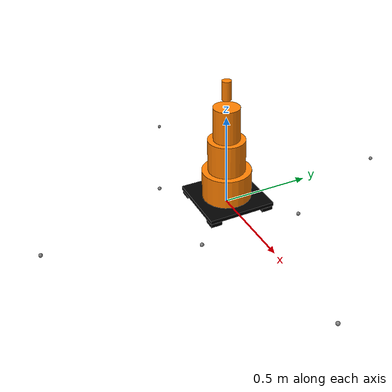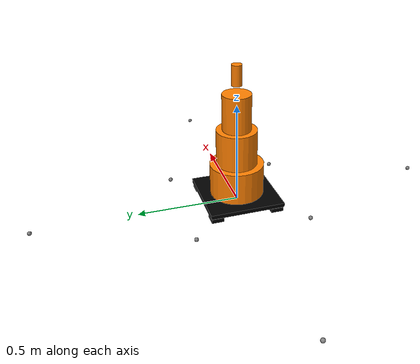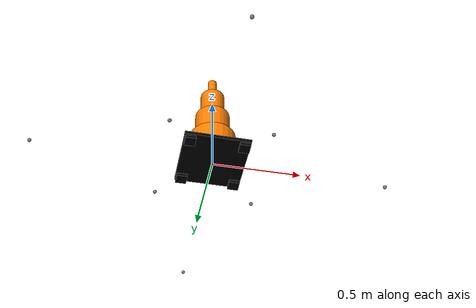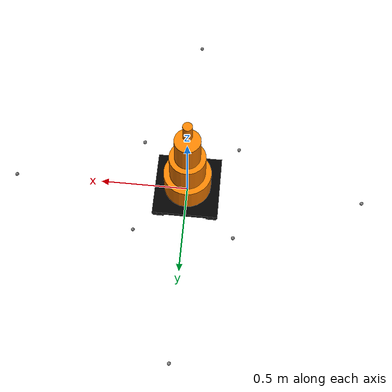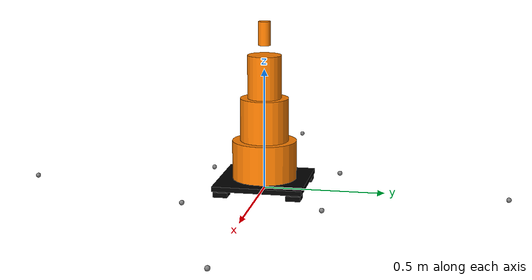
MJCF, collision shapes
<mujoco model="traffic_cone">
  <!-- Copyright (c) 2025 Boston Dynamics AI Institute LLC. All rights reserved. -->
  <!-- Physical object: BOEN 28 in. Orange PVC Non-Reflective Traffic Safety Cone -->
  <!-- Purchase link: https://www.homedepot.com/p/BOEN-28-in-Orange-PVC-Non-Reflective-Traffic-Safety-Cone-TC-28/303390706 -->
  <include file="traffic_cone_defs.xml" />

  <worldbody>
    <body name="traffic_cone" pos="0 0 0">
      <joint name="traffic_cone_joint" type="free"/>
      <inertial pos="0 0 0.24" mass="3.36" diaginertia="0.25 0.25 0.09"/>

      <!-- Visual mesh -->
      <geom name="traffic_cone_visual" class="visual_cone" type="mesh" mesh="traffic_cone_mesh" material="traffic_cone_material"/>

      <!-- Collision meshes -->
      <geom name="traffic_cone_base_collision"
            type="box"
            size="0.18415 0.18415 0.01"
            pos="0 0 0.033"
            material="traffic_cone_black"
            class="collision_cone"
            friction="1.5 1.5"/>
      <geom name="traffic_cone_ft1_collision"
            type="box"
            size="0.03 0.03 0.01"
            pos="0.15 0.15 0.008"
            material="traffic_cone_black"
            class="collision_cone"
            friction="1.5 1.5"/>
      <geom name="traffic_cone_ft2_collision"
            type="box"
            size="0.03 0.03 0.01"
            pos="-0.15 -0.15 0.008"
            material="traffic_cone_black"
            class="collision_cone"
            friction="1.5 1.5"/>
      <geom name="traffic_cone_ft3_collision"
            type="box"
            size="0.03 0.03 0.01"
            pos="0.15 -0.15 0.008"
            material="traffic_cone_black"
            class="collision_cone"
            friction="1.5 1.5"/>
      <geom name="traffic_cone_ft4_collision"
            type="box"
            size="0.03 0.03 0.01"
            pos="-0.15 0.15 0.008"
            material="traffic_cone_black"
            class="collision_cone"
            friction="1.5 1.5"/>
      <!-- Bottom section -->
      <geom name="traffic_cone_bottom_collision"
            type="cylinder"
            size="0.13335 0.0889"
            pos="0 0 0.1139"
            rgba="1.0 0.5 0.0 1.0"
            class="collision_cone"
            friction="0.5 0.5"/>

      <!-- Lower-middle section -->
      <geom name="traffic_cone_lower_mid_collision"
            type="cylinder"
            size="0.10 0.0889"
            pos="0 0 0.2917"
            rgba="1.0 0.5 0.0 1.0"
            class="collision_cone"
            friction="0.5 0.5"/>

      <!-- Upper-middle section -->
      <geom name="traffic_cone_upper_mid_collision"
            type="cylinder"
            size="0.07 0.0889"
            pos="0 0 0.4695"
            rgba="1.0 0.5 0.0 1.0"
            class="collision_cone"
            friction="0.5 0.5"/>

      <!-- Top section -->
      <geom name="traffic_cone_top_collision"
            type="cylinder"
            size="0.025 0.0489"
            pos="0 0 0.6473"
            rgba="1.0 0.5 0.0 1.0"
            class="collision_cone"
            friction="0.5 0.5"/>

      <!-- Sites for sensors and tracing -->
      <site name="trace_traffic_cone" pos="0 0 0.24" size="0.01"/>
      <site name="site_object" pos="0 0 0.24" size="0.01"/>
      <site name="trace_traffic_cone_top" pos="0 0 0.673" size="0.01"/>
      <site name="site_traffic_cone_top" pos="0 0 0.673" size="0.01"/>

      <!-- Corner sites on base plate for grasping -->
      <!-- Base plate half-width = 0.18415m -->
      <site name="site_base_corner_fl" pos="0.2815 0.2815 0.0" size="0.01"/>  <!-- front-left corner -->
      <site name="site_base_corner_fr" pos="0.2815 -0.2815 0.0" size="0.01"/> <!-- front-right corner -->
      <site name="site_base_corner_bl" pos="-0.2815 0.2815 0.0" size="0.01"/> <!-- back-left corner -->
      <site name="site_base_corner_br" pos="-0.2815 -0.2815 0.0" size="0.01"/> <!-- back-right corner -->

      <!-- Extended approach sites beyond base plate for torso proximity (at ground level) -->
      <site name="site_approach_front" pos="1.0 0 0.0" size="0.01"/>
      <site name="site_approach_back" pos="-1.0 0 0.0" size="0.01"/>
      <site name="site_approach_left" pos="0 1.0 0.0" size="0.01"/>
      <site name="site_approach_right" pos="0 -1.0 0.0" size="0.01"/>

    </body>
  </worldbody>
</mujoco>

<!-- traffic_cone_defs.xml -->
<mujoco model="traffic_cone_defs">
<!-- Copyright (c) 2025 Boston Dynamics AI Institute LLC. All rights reserved. -->

  <default>
    <default class="visual_cone">
      <geom type="mesh" contype="0" conaffinity="0" group="2"/>
    </default>
    <default class="collision_cone">
      <geom friction="1.0 1.15" priority="6" group="0"/>
    </default>
  </default>

  <asset>
      <material name="traffic_cone_orange" rgba="1.0 0.5 0.0 1.0"/>
      <material name="traffic_cone_black" rgba="0.0 0.0 0.0 1.0"/>
      <material name="traffic_cone_material" rgba="1.0 0.5 0.0 1.0"/>
      <mesh name="traffic_cone_mesh" file="../../../meshes/traffic_cone/visual/visual.obj"/>
  </asset>

</mujoco>
